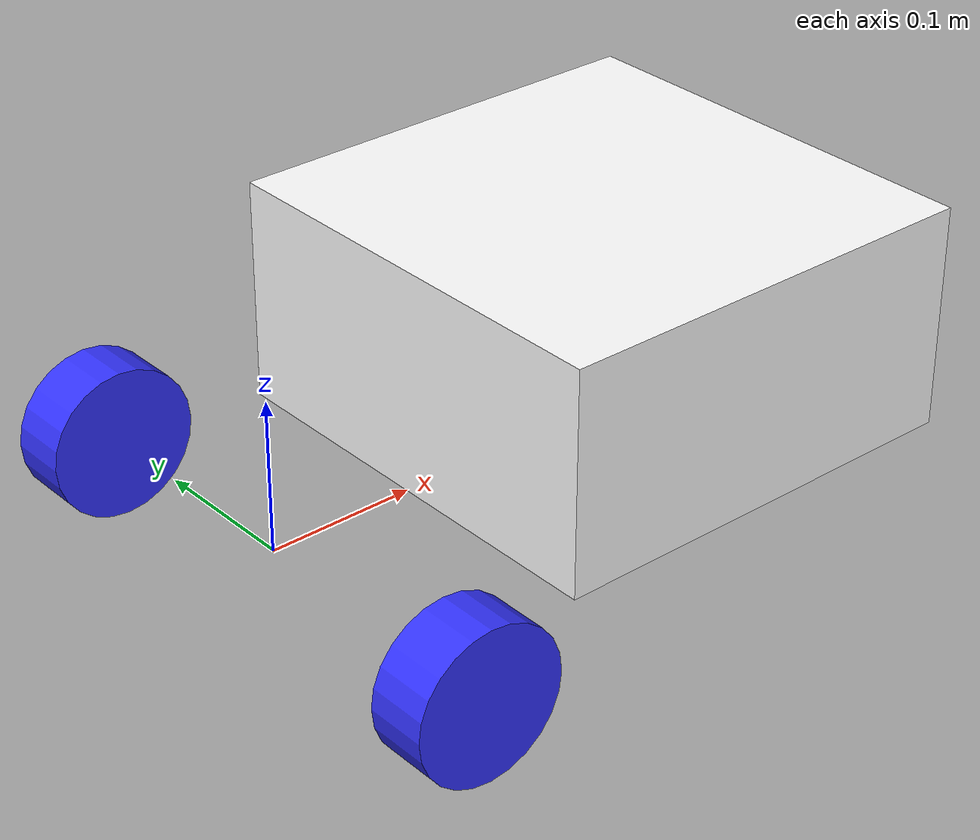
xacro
<?xml version="1.0"?>
<robot xmlns:xacro="http://www.ros.org/wiki/xacro" name="robot">

    <xacro:include filename="robot_core.xacro" />
    <xacro:include filename="gazebo_control.xacro" />
    <!-- Example link -->

</robot>

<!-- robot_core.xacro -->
<robot xmlns:xacro="http://www.ros.org/wiki/xacro">
<xacro:include filename="inertial_macros.xacro" />

    <material name="white">
        <color rgba="1 1 1 1"/>
    </material>

    <material name="orange">
        <color rgba="1 0.3 0.1 1"/>
    </material>

    <material name="blue">
        <color rgba="0.2 0.2 1 1"/>
    </material>

    <material name="black">
        <color rgba="0 0 0 1"/>
    </material>

    <!-- Example link -->
    <link name="base_link"></link>

    <joint name="chassis_joint" type="fixed">
        <parent link="base_link"/>
        <child link="chassis"/>
        <origin xyz="0.1 0.0 0.0"/>
    </joint>

    <link name="chassis">
        <visual>
            <origin xyz="0.15 0.0 0.075"/>
            <geometry>
                <box size="0.3 0.3 0.15"/>
            </geometry>
            <material name="white"/>
        </visual>
        <collision>
            <origin xyz="0.15 0.0 0.075"/>
            <geometry>
                <box size="0.3 0.3 0.15"/>
            </geometry>
            <material name="white"/>
        </collision>
        <xacro:inertial_box mass="0.5" x="0.3" y="0.3" z="0.15">
            <origin xyz="0.15 0 0.075" rpy="0 0 0"/>
        </xacro:inertial_box>
    </link>

    <gazebo reference="chassis">
        <material>Gazebo/White</material>
    </gazebo>

    <joint name="left_wheel_joint" type="continuous">
        <parent link="base_link"/>
        <child link="left_wheel"/>
        <origin xyz="0 0.175 0" rpy="-${pi/2} 0 0"/>
        <axis xyz="0 0 1"/>
    </joint>

    <link name="left_wheel">
        <visual>
            <geometry>
                <cylinder length="0.04" radius="0.05" />/>
            </geometry>
            <material name="blue"/>
        </visual>
        <collision>
            <geometry>
                <cylinder length="0.04" radius="0.05" />/>
            </geometry>
            <material name="blue"/>
        </collision>
        <xacro:inertial_cylinder mass="0.1" length="0.05" radius="0.05">
            <origin xyz="0 0 0" rpy="0 0 0"/>
        </xacro:inertial_cylinder>
    </link>

<gazebo reference="left_wheel">
    <material>Gazebo/Blue</material>
</gazebo>

    <joint name="right_wheel_joint" type="continuous">
        <parent link="base_link"/>
        <child link="right_wheel"/>
        <origin xyz="0 -0.175 0" rpy="${pi/2} 0 0"/>
        <axis xyz="0 0 -1"/>
    </joint>

    <link name="right_wheel">
        <visual>
            <geometry>
                <cylinder length="0.04" radius="0.05" />/>
            </geometry>
            <material name="blue"/>
        </visual>
        <collision>
            <geometry>
                <cylinder length="0.04" radius="0.05" />/>
            </geometry>
            <material name="blue"/>
        </collision>
        <xacro:inertial_cylinder mass="0.1" length="0.05" radius="0.05">
            <origin xyz="0 0 0" rpy="0 0 0"/>
        </xacro:inertial_cylinder>
    </link>

<gazebo reference="right_wheel">
    <material>Gazebo/Blue</material>
</gazebo>

    <joint name="caster_wheel_joint" type="fixed">
        <parent link="chassis"/>
        <child link="caster_wheel"/>
        <origin xyz="0.24 0 0" rpy="0 0 0"/>
    </joint>

    <link name="caster_wheel">
        <visual>
            <geometry>
                <sphere radius="0.05" />
            </geometry>
            <material name="black"/>
        </visual>
        <collision>
            <geometry>
                <sphere radius="0.05" />
            </geometry>
            <material name="black"/>
        </collision>
        <xacro:inertial_sphere mass="0.1" radius="0.05">
            <origin xyz="0 0 0" rpy="0 0 0"/>
        </xacro:inertial_sphere>
    </link>

<gazebo reference="caster_wheel">
    <material>Gazebo/Black</material>
    <mu1 value="0.001"/>
    <mu2 value="0.001"/>
</gazebo>

</robot>
